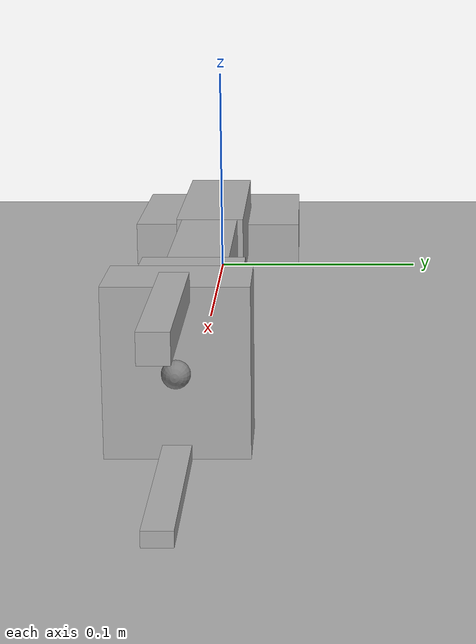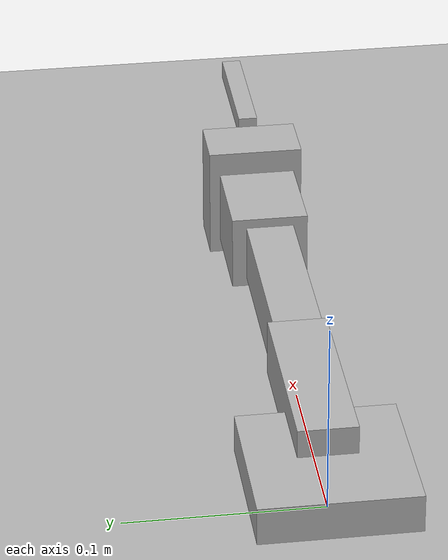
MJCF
<mujoco model="ArmPi">

  <compiler angle="degree" autolimits="true"/>

  <option gravity="0 0 -9.81"/>

  <default>
    <joint damping="0.1"/>
    <geom type="box" rgba="0.7 0.7 0.7 1" contype="1" conaffinity="1"/>
  </default>

  <asset>
   <texture name="grid" type="2d" builtin="checker" width="512" height="512" rgb1=".1 .2 .3" rgb2=".2 .3 .4"/>
    <material name="grid" texture="grid" texrepeat="1 1" texuniform="true" reflectance=".2"/>
  </asset>

  <worldbody>

    <!-- Base (fixed to world) -->
    <geom name="floor" size="0 0 .05" type="plane" material="grid" condim="1" conaffinity="1"/>
    <light name="spotlight" mode="targetbodycom" target="wrist_3_link" pos="0 -1 2"/>
    <body name="base_link" pos="0 0 0.01">
      <geom name="base_geom" size="0.04 0.04 0.01" pos="0 0 0.01"/>
      <!-- base_motor: revolute around Z -->
      <joint name="base_motor" type="hinge" axis="0 0 1" pos="0 0 0"
             range="0 180" actuatorfrcrange="-10 10"/>

      <body name="link1" pos="0 0 0.02" euler="0 90 0">
        <geom name="link1_geom" size="0.015 0.015 0.05" pos="0 0 0.05"/>
        <!-- link1_motor: revolute around X -->
        <joint name="link1_motor" type="hinge" axis="0 -1 0" pos="0 0 0"
               range="0 180" actuatorfrcrange="-10 10"/>

        <body name="link2" pos="0 0 0.1">
          <geom name="link2_geom" size="0.015 0.0125 0.0475" pos="0 0 0.0475"/>
          <!-- link2_motor: revolute around X -->
          <joint name="link2_motor" type="hinge" axis="0 -1 0" pos="0 0 0"
                 range="-90 90" actuatorfrcrange="-10 10"/>

          <body name="link3" pos="0 0 0.095">
            <geom name="link3_geom" size="0.02 0.02 0.025" pos="0 0 0.025"/>
            <!-- link3_motor: revolute around X -->
            <joint name="link3_motor" type="hinge" axis="0 -1 0" pos="0 0 0"
                   range="-90 90" actuatorfrcrange="-10 10"/>

            <body name="wrist_3_link" pos="0 0 0.05">
              <geom name="link4_geom1" size="0.01 0.01 0.0025" pos="0 0 0.0025"/>
              <geom name="link4_geom2" size="0.03 0.025 0.015" pos="0 0 0.02"/>
              <!-- link4_motor: revolute around Z (wrist rotation) -->
              <joint name="link4_motor" type="hinge" axis="0 0 1" pos="0 0 0"
                     range="-180 180" actuatorfrcrange="-5 5"/>

              <!-- Left claw -->
              <body name="left_claw" pos="-0.015 0 0.035">
                <geom name="left_claw_geom" size="0.005 0.005 0.035" pos="-0.015 0 0.035"/>
              </body>

              <!-- Right claw -->
              <body name="right_claw" pos="0.015 0 0.035">
                <geom name="right_claw_geom" size="0.005 0.005 0.035" pos="0.015 0 0.035"/>
              </body>

              <site name="attachment_site" pos="0 0 0.035" quat="1 0 0 0"/>

            </body>
          </body>
        </body>
      </body>
    </body>

  </worldbody>

  <actuator>
    <motor name="base_motor_act"         joint="base_motor"         gear="1" ctrllimited="true" ctrlrange="-10 10"/>
    <motor name="link1_motor_act"        joint="link1_motor"        gear="1" ctrllimited="true" ctrlrange="-10 10"/>
    <motor name="link2_motor_act"        joint="link2_motor"        gear="1" ctrllimited="true" ctrlrange="-10 10"/>
    <motor name="link3_motor_act"        joint="link3_motor"        gear="1" ctrllimited="true" ctrlrange="-10 10"/>
    <motor name="link4_motor_act"        joint="link4_motor"        gear="1" ctrllimited="true" ctrlrange="-5 5"/>
  </actuator>

  <keyframe>
    <key name="home" qpos="-1.5708 -1.5708 1.5708 -1.5708 -1.5708" ctrl="-1.5708 -1.5708 1.5708 -1.5708 -1.5708"/>
  </keyframe>

</mujoco>
